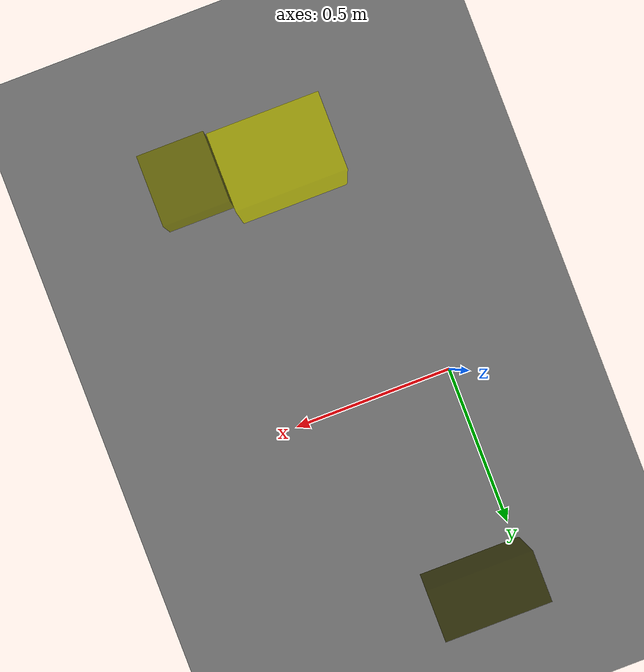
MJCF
<?xml version="1.0"?>
<mujoco model="obstacle_scene">
  <compiler angle="radian" coordinate="local"/>
  <option timestep="0.001" gravity="0 0 -9.81"/>

  <asset>
    <material name="obstacle_mat" rgba="0.8 0.8 0.0 0.8"/>
    <material name="ground_mat" rgba="0.5 0.5 0.5 1"/>
  </asset>

  <worldbody>
    <!-- Ground plane -->
    <geom name="ground" type="plane" size="3 3 0.1" material="ground_mat"/>

    <!-- Obstacles -->
    <body name="obstacle_0" pos="0.167010 0.531271 0.528615">
      <geom name="obs_0" type="box" size="0.140783 0.067324 0.102928" rgba="0.2 0.2 0.0 0.8"/>
    </body>
    <body name="obstacle_1" pos="0.526788 -0.758671 0.306247">
      <geom name="obs_1" type="box" size="0.097042 0.102492 0.059317" rgba="0.5 0.5 0.0 0.8"/>
    </body>
    <body name="obstacle_2" pos="0.263650 -0.707944 0.389851">
      <geom name="obs_2" type="box" size="0.155253 0.107823 0.118266" rgba="0.8 0.8 0.0 0.8"/>
    </body>
  </worldbody>
</mujoco>
